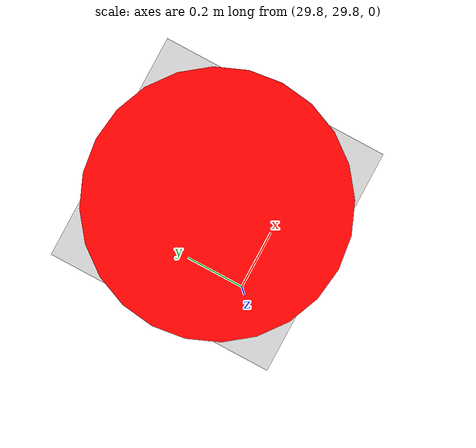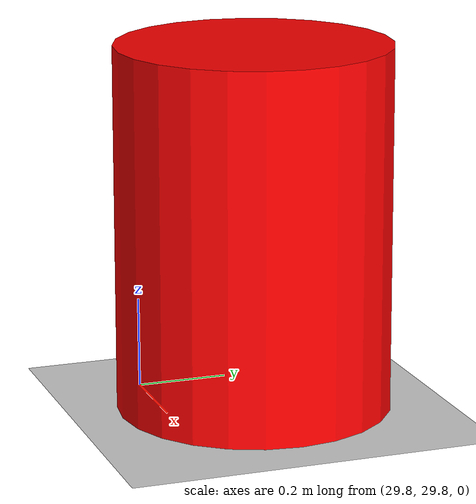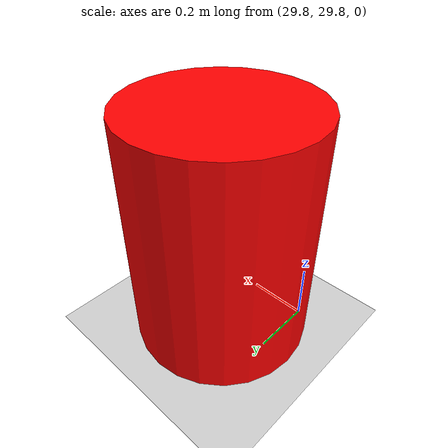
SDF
<?xml version="1.0" ?>
<sdf version="1.9">
  <world name="teacher_obstacle_ctrl_v01">
    <physics name="1ms" type="ignored">
      <max_step_size>0.001</max_step_size>
      <real_time_factor>1</real_time_factor>
      <real_time_update_rate>1000</real_time_update_rate>
    </physics>

    <plugin name="ignition::gazebo::systems::Physics" filename="ignition-gazebo-physics-system"/>
    <plugin name="ignition::gazebo::systems::UserCommands" filename="ignition-gazebo-user-commands-system"/>
    <plugin name="ignition::gazebo::systems::SceneBroadcaster" filename="ignition-gazebo-scene-broadcaster-system"/>
    <plugin name="ignition::gazebo::systems::Contact" filename="ignition-gazebo-contact-system"/>

    <light name="sun" type="directional">
      <pose>0 0 20 0 0 0</pose>
      <cast_shadows>true</cast_shadows>
      <intensity>1.2</intensity>
      <direction>-0.5 0.1 -0.9</direction>
      <diffuse>1 1 1 1</diffuse>
      <specular>0.2 0.2 0.2 1</specular>
    </light>

    <model name="ground_plane">
      <static>true</static>
      <link name="link">
        <collision name="collision">
          <geometry>
            <plane>
              <normal>0 0 1</normal>
              <size>80.0 80.0</size>
            </plane>
          </geometry>
        </collision>
        <visual name="visual">
          <geometry>
            <plane>
              <normal>0 0 1</normal>
              <size>80.0 80.0</size>
            </plane>
          </geometry>
          <material>
            <ambient>0.82 0.82 0.82 1</ambient>
            <diffuse>0.82 0.82 0.82 1</diffuse>
          </material>
        </visual>
      </link>
    </model>

    <model name="dynamic_obstacle">
      <pose>30.0 30.0 0.4 0 0 0</pose>
      <link name="link">
        <kinematic>true</kinematic>

        <inertial>
          <mass>10.0</mass>
          <inertia>
            <ixx>1.0</ixx>
            <iyy>1.0</iyy>
            <izz>1.0</izz>
            <ixy>0.0</ixy>
            <ixz>0.0</ixz>
            <iyz>0.0</iyz>
          </inertia>
        </inertial>

        <collision name="collision">
          <geometry>
            <cylinder>
              <radius>0.3</radius>
              <length>0.8</length>
            </cylinder>
          </geometry>
        </collision>

        <visual name="visual">
          <geometry>
            <cylinder>
              <radius>0.3</radius>
              <length>0.8</length>
            </cylinder>
          </geometry>
          <material>
            <ambient>1 0 0 1</ambient>
            <diffuse>1 0 0 1</diffuse>
          </material>
        </visual>
      </link>

      <plugin filename="ignition-gazebo-velocity-control-system" name="ignition::gazebo::systems::VelocityControl">
        <topic>/obstacle/cmd_vel</topic>
      </plugin>
    </model>

  </world>
</sdf>
